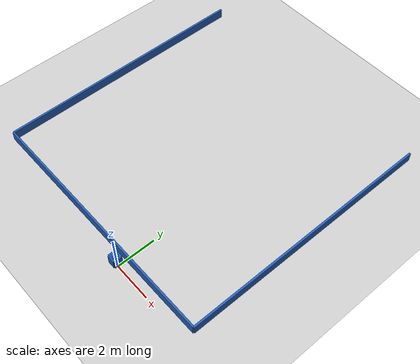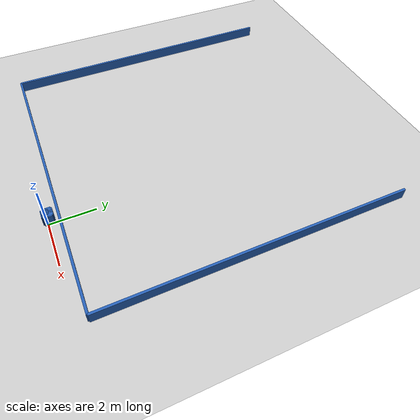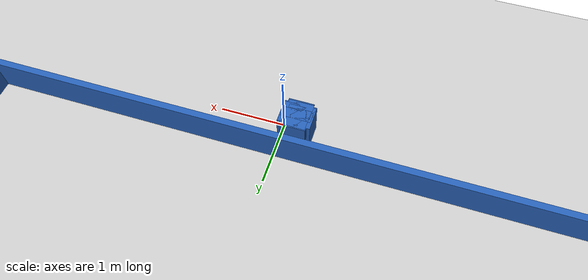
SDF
<?xml version="1.0" ?>
    <sdf version="1.5">
      <world name="default">
        <!-- A global light source -->
        <include>
          <uri>model://sun</uri>
        </include>
        <!-- A ground plane -->
        <include>
          <uri>model://ground_plane</uri>
        </include>

    <model name='libopen_space_final_T2B_79_14'>
      <static>1</static>
      <pose frame=''>-0.225000 0.075000 0.000000 0.000000 0.000000 0.000000</pose>
      <link name='link'>
        <inertial>
          <mass>1</mass>
          <inertia>
            <ixx>0.145833</ixx>
            <ixy>0</ixy>
            <ixz>0</ixz>
            <iyy>0.145833</iyy>
            <iyz>0</iyz>
            <izz>0.125</izz>
          </inertia>
        </inertial>
        <collision name='collision'>
          <geometry>
            <box>
              <size>0.38 0.48 1</size>
            </box>
          </geometry>
          <max_contacts>10</max_contacts>
          <surface>
            <contact>
              <ode/>
            </contact>
            <bounce/>
            <friction>
              <torsional>
                <ode/>
              </torsional>
              <ode/>
            </friction>
          </surface>
        </collision>
        <visual name='visual'>
          <geometry>
            <box>
              <size>0.38 0.48 1</size>
            </box>
          </geometry>
	    <material>
              <ambient>0.152000 0.379000 0.720000 1</ambient>
	      <diffuse>0.152000 0.379000 0.720000 1</diffuse>
          </material>
          <material>
            <script>
              <name>Gazebo/Grey</name>
              <uri>file://media/materials/scripts/gazebo.material</uri>
            </script>
          </material>
        </visual>
        <self_collide>0</self_collide>
        <kinematic>0</kinematic>
        <gravity>1</gravity>
      </link>
      <plugin name='libopen_space_final_T2B_79_14' filename='libopen_space_final_T2B_79_14.so'/>
    </model>

    <model name='libopen_space_final_T2B_112_28'>
      <static>1</static>
      <pose frame=''>-0.225000 0.075000 0.000000 0.000000 0.000000 0.000000</pose>
      <link name='link'>
        <inertial>
          <mass>1</mass>
          <inertia>
            <ixx>0.145833</ixx>
            <ixy>0</ixy>
            <ixz>0</ixz>
            <iyy>0.145833</iyy>
            <iyz>0</iyz>
            <izz>0.125</izz>
          </inertia>
        </inertial>
        <collision name='collision'>
          <geometry>
            <box>
              <size>0.39 0.44 1</size>
            </box>
          </geometry>
          <max_contacts>10</max_contacts>
          <surface>
            <contact>
              <ode/>
            </contact>
            <bounce/>
            <friction>
              <torsional>
                <ode/>
              </torsional>
              <ode/>
            </friction>
          </surface>
        </collision>
        <visual name='visual'>
          <geometry>
            <box>
              <size>0.39 0.44 1</size>
            </box>
          </geometry>
	    <material>
              <ambient>0.152000 0.379000 0.720000 1</ambient>
	      <diffuse>0.152000 0.379000 0.720000 1</diffuse>
          </material>
          <material>
            <script>
              <name>Gazebo/Grey</name>
              <uri>file://media/materials/scripts/gazebo.material</uri>
            </script>
          </material>
        </visual>
        <self_collide>0</self_collide>
        <kinematic>0</kinematic>
        <gravity>1</gravity>
      </link>
      <plugin name='libopen_space_final_T2B_112_28' filename='libopen_space_final_T2B_112_28.so'/>
    </model>

    <model name='libopen_space_final_T2B_121_6'>
      <static>1</static>
      <pose frame=''>-0.225000 0.075000 0.000000 0.000000 0.000000 0.000000</pose>
      <link name='link'>
        <inertial>
          <mass>1</mass>
          <inertia>
            <ixx>0.145833</ixx>
            <ixy>0</ixy>
            <ixz>0</ixz>
            <iyy>0.145833</iyy>
            <iyz>0</iyz>
            <izz>0.125</izz>
          </inertia>
        </inertial>
        <collision name='collision'>
          <geometry>
            <box>
              <size>0.36 0.45 1</size>
            </box>
          </geometry>
          <max_contacts>10</max_contacts>
          <surface>
            <contact>
              <ode/>
            </contact>
            <bounce/>
            <friction>
              <torsional>
                <ode/>
              </torsional>
              <ode/>
            </friction>
          </surface>
        </collision>
        <visual name='visual'>
          <geometry>
            <box>
              <size>0.36 0.45 1</size>
            </box>
          </geometry>
	    <material>
              <ambient>0.152000 0.379000 0.720000 1</ambient>
	      <diffuse>0.152000 0.379000 0.720000 1</diffuse>
          </material>
          <material>
            <script>
              <name>Gazebo/Grey</name>
              <uri>file://media/materials/scripts/gazebo.material</uri>
            </script>
          </material>
        </visual>
        <self_collide>0</self_collide>
        <kinematic>0</kinematic>
        <gravity>1</gravity>
      </link>
      <plugin name='libopen_space_final_T2B_121_6' filename='libopen_space_final_T2B_121_6.so'/>
    </model>

    <model name='libopen_space_final_T2B_111_12'>
      <static>1</static>
      <pose frame=''>-0.225000 0.075000 0.000000 0.000000 0.000000 0.000000</pose>
      <link name='link'>
        <inertial>
          <mass>1</mass>
          <inertia>
            <ixx>0.145833</ixx>
            <ixy>0</ixy>
            <ixz>0</ixz>
            <iyy>0.145833</iyy>
            <iyz>0</iyz>
            <izz>0.125</izz>
          </inertia>
        </inertial>
        <collision name='collision'>
          <geometry>
            <box>
              <size>0.48 0.35 1</size>
            </box>
          </geometry>
          <max_contacts>10</max_contacts>
          <surface>
            <contact>
              <ode/>
            </contact>
            <bounce/>
            <friction>
              <torsional>
                <ode/>
              </torsional>
              <ode/>
            </friction>
          </surface>
        </collision>
        <visual name='visual'>
          <geometry>
            <box>
              <size>0.48 0.35 1</size>
            </box>
          </geometry>
	    <material>
              <ambient>0.152000 0.379000 0.720000 1</ambient>
	      <diffuse>0.152000 0.379000 0.720000 1</diffuse>
          </material>
          <material>
            <script>
              <name>Gazebo/Grey</name>
              <uri>file://media/materials/scripts/gazebo.material</uri>
            </script>
          </material>
        </visual>
        <self_collide>0</self_collide>
        <kinematic>0</kinematic>
        <gravity>1</gravity>
      </link>
      <plugin name='libopen_space_final_T2B_111_12' filename='libopen_space_final_T2B_111_12.so'/>
    </model>

    <model name='libopen_space_final_T2B_77_83'>
      <static>1</static>
      <pose frame=''>-0.225000 0.075000 0.000000 0.000000 0.000000 0.000000</pose>
      <link name='link'>
        <inertial>
          <mass>1</mass>
          <inertia>
            <ixx>0.145833</ixx>
            <ixy>0</ixy>
            <ixz>0</ixz>
            <iyy>0.145833</iyy>
            <iyz>0</iyz>
            <izz>0.125</izz>
          </inertia>
        </inertial>
        <collision name='collision'>
          <geometry>
            <box>
              <size>0.44 0.16 1</size>
            </box>
          </geometry>
          <max_contacts>10</max_contacts>
          <surface>
            <contact>
              <ode/>
            </contact>
            <bounce/>
            <friction>
              <torsional>
                <ode/>
              </torsional>
              <ode/>
            </friction>
          </surface>
        </collision>
        <visual name='visual'>
          <geometry>
            <box>
              <size>0.44 0.16 1</size>
            </box>
          </geometry>
	    <material>
              <ambient>0.152000 0.379000 0.720000 1</ambient>
	      <diffuse>0.152000 0.379000 0.720000 1</diffuse>
          </material>
          <material>
            <script>
              <name>Gazebo/Grey</name>
              <uri>file://media/materials/scripts/gazebo.material</uri>
            </script>
          </material>
        </visual>
        <self_collide>0</self_collide>
        <kinematic>0</kinematic>
        <gravity>1</gravity>
      </link>
      <plugin name='libopen_space_final_T2B_77_83' filename='libopen_space_final_T2B_77_83.so'/>
    </model>

    <model name='libopen_space_final_T2B_126_41'>
      <static>1</static>
      <pose frame=''>-0.225000 0.075000 0.000000 0.000000 0.000000 0.000000</pose>
      <link name='link'>
        <inertial>
          <mass>1</mass>
          <inertia>
            <ixx>0.145833</ixx>
            <ixy>0</ixy>
            <ixz>0</ixz>
            <iyy>0.145833</iyy>
            <iyz>0</iyz>
            <izz>0.125</izz>
          </inertia>
        </inertial>
        <collision name='collision'>
          <geometry>
            <box>
              <size>0.31 0.30 1</size>
            </box>
          </geometry>
          <max_contacts>10</max_contacts>
          <surface>
            <contact>
              <ode/>
            </contact>
            <bounce/>
            <friction>
              <torsional>
                <ode/>
              </torsional>
              <ode/>
            </friction>
          </surface>
        </collision>
        <visual name='visual'>
          <geometry>
            <box>
              <size>0.31 0.30 1</size>
            </box>
          </geometry>
	    <material>
              <ambient>0.152000 0.379000 0.720000 1</ambient>
	      <diffuse>0.152000 0.379000 0.720000 1</diffuse>
          </material>
          <material>
            <script>
              <name>Gazebo/Grey</name>
              <uri>file://media/materials/scripts/gazebo.material</uri>
            </script>
          </material>
        </visual>
        <self_collide>0</self_collide>
        <kinematic>0</kinematic>
        <gravity>1</gravity>
      </link>
      <plugin name='libopen_space_final_T2B_126_41' filename='libopen_space_final_T2B_126_41.so'/>
    </model>

    <model name='libopen_space_final_T2B_129_11'>
      <static>1</static>
      <pose frame=''>-0.225000 0.075000 0.000000 0.000000 0.000000 0.000000</pose>
      <link name='link'>
        <inertial>
          <mass>1</mass>
          <inertia>
            <ixx>0.145833</ixx>
            <ixy>0</ixy>
            <ixz>0</ixz>
            <iyy>0.145833</iyy>
            <iyz>0</iyz>
            <izz>0.125</izz>
          </inertia>
        </inertial>
        <collision name='collision'>
          <geometry>
            <box>
              <size>0.37 0.21 1</size>
            </box>
          </geometry>
          <max_contacts>10</max_contacts>
          <surface>
            <contact>
              <ode/>
            </contact>
            <bounce/>
            <friction>
              <torsional>
                <ode/>
              </torsional>
              <ode/>
            </friction>
          </surface>
        </collision>
        <visual name='visual'>
          <geometry>
            <box>
              <size>0.37 0.21 1</size>
            </box>
          </geometry>
	    <material>
              <ambient>0.152000 0.379000 0.720000 1</ambient>
	      <diffuse>0.152000 0.379000 0.720000 1</diffuse>
          </material>
          <material>
            <script>
              <name>Gazebo/Grey</name>
              <uri>file://media/materials/scripts/gazebo.material</uri>
            </script>
          </material>
        </visual>
        <self_collide>0</self_collide>
        <kinematic>0</kinematic>
        <gravity>1</gravity>
      </link>
      <plugin name='libopen_space_final_T2B_129_11' filename='libopen_space_final_T2B_129_11.so'/>
    </model>

    <model name='libopen_space_final_T2B_56_75'>
      <static>1</static>
      <pose frame=''>-0.225000 0.075000 0.000000 0.000000 0.000000 0.000000</pose>
      <link name='link'>
        <inertial>
          <mass>1</mass>
          <inertia>
            <ixx>0.145833</ixx>
            <ixy>0</ixy>
            <ixz>0</ixz>
            <iyy>0.145833</iyy>
            <iyz>0</iyz>
            <izz>0.125</izz>
          </inertia>
        </inertial>
        <collision name='collision'>
          <geometry>
            <box>
              <size>0.37 0.45 1</size>
            </box>
          </geometry>
          <max_contacts>10</max_contacts>
          <surface>
            <contact>
              <ode/>
            </contact>
            <bounce/>
            <friction>
              <torsional>
                <ode/>
              </torsional>
              <ode/>
            </friction>
          </surface>
        </collision>
        <visual name='visual'>
          <geometry>
            <box>
              <size>0.37 0.45 1</size>
            </box>
          </geometry>
	    <material>
              <ambient>0.152000 0.379000 0.720000 1</ambient>
	      <diffuse>0.152000 0.379000 0.720000 1</diffuse>
          </material>
          <material>
            <script>
              <name>Gazebo/Grey</name>
              <uri>file://media/materials/scripts/gazebo.material</uri>
            </script>
          </material>
        </visual>
        <self_collide>0</self_collide>
        <kinematic>0</kinematic>
        <gravity>1</gravity>
      </link>
      <plugin name='libopen_space_final_T2B_56_75' filename='libopen_space_final_T2B_56_75.so'/>
    </model>

    <model name='libopen_space_final_T2B_51_1'>
      <static>1</static>
      <pose frame=''>-0.225000 0.075000 0.000000 0.000000 0.000000 0.000000</pose>
      <link name='link'>
        <inertial>
          <mass>1</mass>
          <inertia>
            <ixx>0.145833</ixx>
            <ixy>0</ixy>
            <ixz>0</ixz>
            <iyy>0.145833</iyy>
            <iyz>0</iyz>
            <izz>0.125</izz>
          </inertia>
        </inertial>
        <collision name='collision'>
          <geometry>
            <box>
              <size>0.11 0.34 1</size>
            </box>
          </geometry>
          <max_contacts>10</max_contacts>
          <surface>
            <contact>
              <ode/>
            </contact>
            <bounce/>
            <friction>
              <torsional>
                <ode/>
              </torsional>
              <ode/>
            </friction>
          </surface>
        </collision>
        <visual name='visual'>
          <geometry>
            <box>
              <size>0.11 0.34 1</size>
            </box>
          </geometry>
	    <material>
              <ambient>0.152000 0.379000 0.720000 1</ambient>
	      <diffuse>0.152000 0.379000 0.720000 1</diffuse>
          </material>
          <material>
            <script>
              <name>Gazebo/Grey</name>
              <uri>file://media/materials/scripts/gazebo.material</uri>
            </script>
          </material>
        </visual>
        <self_collide>0</self_collide>
        <kinematic>0</kinematic>
        <gravity>1</gravity>
      </link>
      <plugin name='libopen_space_final_T2B_51_1' filename='libopen_space_final_T2B_51_1.so'/>
    </model>

    <model name='libopen_space_final_T2B_122_30'>
      <static>1</static>
      <pose frame=''>-0.225000 0.075000 0.000000 0.000000 0.000000 0.000000</pose>
      <link name='link'>
        <inertial>
          <mass>1</mass>
          <inertia>
            <ixx>0.145833</ixx>
            <ixy>0</ixy>
            <ixz>0</ixz>
            <iyy>0.145833</iyy>
            <iyz>0</iyz>
            <izz>0.125</izz>
          </inertia>
        </inertial>
        <collision name='collision'>
          <geometry>
            <box>
              <size>0.28 0.18 1</size>
            </box>
          </geometry>
          <max_contacts>10</max_contacts>
          <surface>
            <contact>
              <ode/>
            </contact>
            <bounce/>
            <friction>
              <torsional>
                <ode/>
              </torsional>
              <ode/>
            </friction>
          </surface>
        </collision>
        <visual name='visual'>
          <geometry>
            <box>
              <size>0.28 0.18 1</size>
            </box>
          </geometry>
	    <material>
              <ambient>0.152000 0.379000 0.720000 1</ambient>
	      <diffuse>0.152000 0.379000 0.720000 1</diffuse>
          </material>
          <material>
            <script>
              <name>Gazebo/Grey</name>
              <uri>file://media/materials/scripts/gazebo.material</uri>
            </script>
          </material>
        </visual>
        <self_collide>0</self_collide>
        <kinematic>0</kinematic>
        <gravity>1</gravity>
      </link>
      <plugin name='libopen_space_final_T2B_122_30' filename='libopen_space_final_T2B_122_30.so'/>
    </model>

    <model name='libopen_space_final_T2B_148_40'>
      <static>1</static>
      <pose frame=''>-0.225000 0.075000 0.000000 0.000000 0.000000 0.000000</pose>
      <link name='link'>
        <inertial>
          <mass>1</mass>
          <inertia>
            <ixx>0.145833</ixx>
            <ixy>0</ixy>
            <ixz>0</ixz>
            <iyy>0.145833</iyy>
            <iyz>0</iyz>
            <izz>0.125</izz>
          </inertia>
        </inertial>
        <collision name='collision'>
          <geometry>
            <box>
              <size>0.49 0.38 1</size>
            </box>
          </geometry>
          <max_contacts>10</max_contacts>
          <surface>
            <contact>
              <ode/>
            </contact>
            <bounce/>
            <friction>
              <torsional>
                <ode/>
              </torsional>
              <ode/>
            </friction>
          </surface>
        </collision>
        <visual name='visual'>
          <geometry>
            <box>
              <size>0.49 0.38 1</size>
            </box>
          </geometry>
	    <material>
              <ambient>0.152000 0.379000 0.720000 1</ambient>
	      <diffuse>0.152000 0.379000 0.720000 1</diffuse>
          </material>
          <material>
            <script>
              <name>Gazebo/Grey</name>
              <uri>file://media/materials/scripts/gazebo.material</uri>
            </script>
          </material>
        </visual>
        <self_collide>0</self_collide>
        <kinematic>0</kinematic>
        <gravity>1</gravity>
      </link>
      <plugin name='libopen_space_final_T2B_148_40' filename='libopen_space_final_T2B_148_40.so'/>
    </model>

    <model name='libopen_space_final_T2B_57_87'>
      <static>1</static>
      <pose frame=''>-0.225000 0.075000 0.000000 0.000000 0.000000 0.000000</pose>
      <link name='link'>
        <inertial>
          <mass>1</mass>
          <inertia>
            <ixx>0.145833</ixx>
            <ixy>0</ixy>
            <ixz>0</ixz>
            <iyy>0.145833</iyy>
            <iyz>0</iyz>
            <izz>0.125</izz>
          </inertia>
        </inertial>
        <collision name='collision'>
          <geometry>
            <box>
              <size>0.15 0.29 1</size>
            </box>
          </geometry>
          <max_contacts>10</max_contacts>
          <surface>
            <contact>
              <ode/>
            </contact>
            <bounce/>
            <friction>
              <torsional>
                <ode/>
              </torsional>
              <ode/>
            </friction>
          </surface>
        </collision>
        <visual name='visual'>
          <geometry>
            <box>
              <size>0.15 0.29 1</size>
            </box>
          </geometry>
	    <material>
              <ambient>0.152000 0.379000 0.720000 1</ambient>
	      <diffuse>0.152000 0.379000 0.720000 1</diffuse>
          </material>
          <material>
            <script>
              <name>Gazebo/Grey</name>
              <uri>file://media/materials/scripts/gazebo.material</uri>
            </script>
          </material>
        </visual>
        <self_collide>0</self_collide>
        <kinematic>0</kinematic>
        <gravity>1</gravity>
      </link>
      <plugin name='libopen_space_final_T2B_57_87' filename='libopen_space_final_T2B_57_87.so'/>
    </model>

    <model name='libopen_space_final_T2B_140_77'>
      <static>1</static>
      <pose frame=''>-0.225000 0.075000 0.000000 0.000000 0.000000 0.000000</pose>
      <link name='link'>
        <inertial>
          <mass>1</mass>
          <inertia>
            <ixx>0.145833</ixx>
            <ixy>0</ixy>
            <ixz>0</ixz>
            <iyy>0.145833</iyy>
            <iyz>0</iyz>
            <izz>0.125</izz>
          </inertia>
        </inertial>
        <collision name='collision'>
          <geometry>
            <box>
              <size>0.45 0.12 1</size>
            </box>
          </geometry>
          <max_contacts>10</max_contacts>
          <surface>
            <contact>
              <ode/>
            </contact>
            <bounce/>
            <friction>
              <torsional>
                <ode/>
              </torsional>
              <ode/>
            </friction>
          </surface>
        </collision>
        <visual name='visual'>
          <geometry>
            <box>
              <size>0.45 0.12 1</size>
            </box>
          </geometry>
	    <material>
              <ambient>0.152000 0.379000 0.720000 1</ambient>
	      <diffuse>0.152000 0.379000 0.720000 1</diffuse>
          </material>
          <material>
            <script>
              <name>Gazebo/Grey</name>
              <uri>file://media/materials/scripts/gazebo.material</uri>
            </script>
          </material>
        </visual>
        <self_collide>0</self_collide>
        <kinematic>0</kinematic>
        <gravity>1</gravity>
      </link>
      <plugin name='libopen_space_final_T2B_140_77' filename='libopen_space_final_T2B_140_77.so'/>
    </model>

        <model name='bottom_wall'>
          <static>1</static>
          <pose frame=''>-2.25 0.5 0.000000 0.000000 0.000000 1.57079632</pose>
          <link name='link'>
            <inertial>
            <mass>1</mass>
            <inertia>
              <ixx>0.145833</ixx>
              <ixy>0</ixy>
              <ixz>0</ixz>
              <iyy>0.145833</iyy>
              <iyz>0</iyz>
              <izz>0.125</izz>
            </inertia>
            </inertial>
            <collision name='collision'>
            <geometry>
              <box>
              <size>0.1 13.5 1</size>
              </box>
            </geometry>
            <max_contacts>10</max_contacts>
            <surface>
              <contact>
              <ode/>
              </contact>
              <bounce/>
              <friction>
              <torsional>
                <ode/>
              </torsional>
              <ode/>
              </friction>
            </surface>
            </collision>
            <visual name='visual'>
            <geometry>
              <box>
              <size>0.1 13.5 1</size>
              </box>
            </geometry>
            <material>
              <ambient>0.152000 0.379000 0.720000 1</ambient>
            <diffuse>0.152000 0.379000 0.720000 1</diffuse>
            </material>
            <material>
              <script>
              <name>Gazebo/Grey</name>
              <uri>file://media/materials/scripts/gazebo.material</uri>
              </script>
            </material>
            </visual>
            <self_collide>0</self_collide>
            <kinematic>0</kinematic>
            <gravity>1</gravity>
          </link>
        </model>

        <model name='left_wall'>
          <static>1</static>
          <pose frame=''>-9 7.25 0.000000 0.000000 0.000000 0.000000</pose>
          <link name='link'>
            <inertial>
            <mass>1</mass>
            <inertia>
              <ixx>0.145833</ixx>
              <ixy>0</ixy>
              <ixz>0</ixz>
              <iyy>0.145833</iyy>
              <iyz>0</iyz>
              <izz>0.125</izz>
            </inertia>
            </inertial>
            <collision name='collision'>
            <geometry>
              <box>
              <size>0.1 13.5 1</size>
              </box>
            </geometry>
            <max_contacts>10</max_contacts>
            <surface>
              <contact>
              <ode/>
              </contact>
              <bounce/>
              <friction>
              <torsional>
                <ode/>
              </torsional>
              <ode/>
              </friction>
            </surface>
            </collision>
            <visual name='visual'>
            <geometry>
              <box>
              <size>0.1 13.5 1</size>
              </box>
            </geometry>
            <material>
              <ambient>0.152000 0.379000 0.720000 1</ambient>
            <diffuse>0.152000 0.379000 0.720000 1</diffuse>
            </material>
            <material>
              <script>
              <name>Gazebo/Grey</name>
              <uri>file://media/materials/scripts/gazebo.material</uri>
              </script>
            </material>
            </visual>
            <self_collide>0</self_collide>
            <kinematic>0</kinematic>
            <gravity>1</gravity>
          </link>
        </model>

        <model name='right_wall'>
          <static>1</static>
          <pose frame=''>4.5 7.25 0.000000 0.000000 0.000000 0.000000</pose>
          <link name='link'>
            <inertial>
            <mass>1</mass>
            <inertia>
              <ixx>0.145833</ixx>
              <ixy>0</ixy>
              <ixz>0</ixz>
              <iyy>0.145833</iyy>
              <iyz>0</iyz>
              <izz>0.125</izz>
            </inertia>
            </inertial>
            <collision name='collision'>
            <geometry>
              <box>
              <size>0.1 13.5 1</size>
              </box>
            </geometry>
            <max_contacts>10</max_contacts>
            <surface>
              <contact>
              <ode/>
              </contact>
              <bounce/>
              <friction>
              <torsional>
                <ode/>
              </torsional>
              <ode/>
              </friction>
            </surface>
            </collision>
            <visual name='visual'>
            <geometry>
              <box>
              <size>0.1 13.5 1</size>
              </box>
            </geometry>
            <material>
              <ambient>0.152000 0.379000 0.720000 1</ambient>
            <diffuse>0.152000 0.379000 0.720000 1</diffuse>
            </material>
            <material>
              <script>
              <name>Gazebo/Grey</name>
              <uri>file://media/materials/scripts/gazebo.material</uri>
              </script>
            </material>
            </visual>
            <self_collide>0</self_collide>
            <kinematic>0</kinematic>
            <gravity>1</gravity>
          </link>
        </model>

      </world>
    </sdf>"
